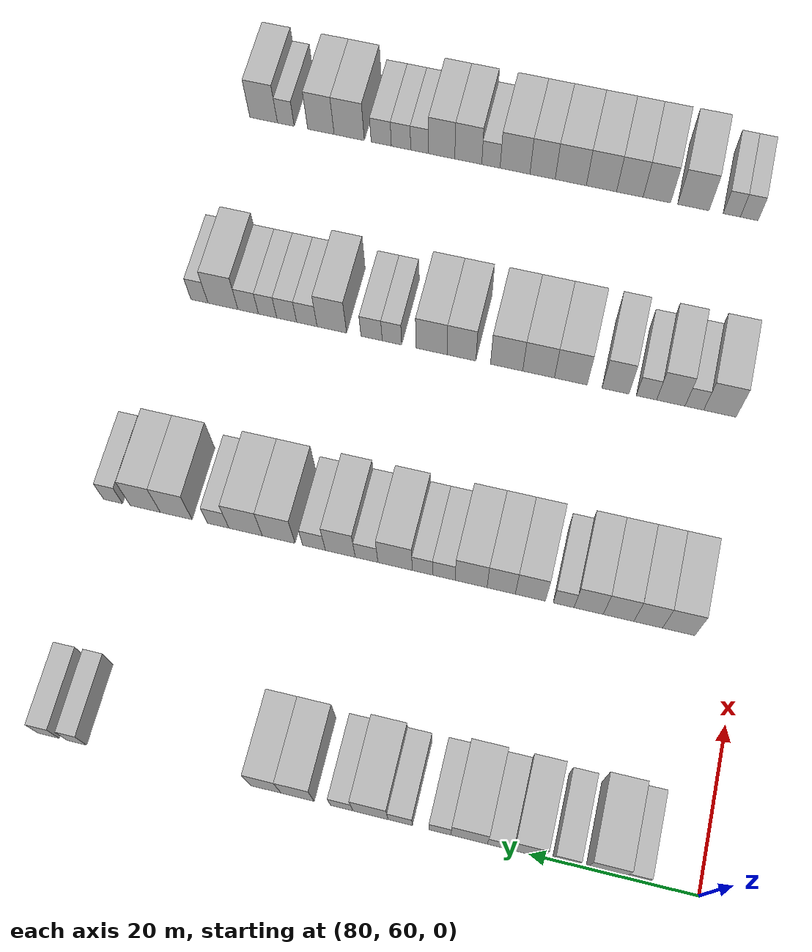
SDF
<sdf version="1.6">
 <world name="default">
  <model name="building_580">
   <static>1</static>
   <pose>85.0000 67.5329 0 0.000000 0.000000 0.000000</pose>
   <link name="link">
    <pose>0 0 3.00 0 0 0</pose>
    <collision name="collision"><geometry><box><size>10.0000 2.6239 6.0000</size></box></geometry></collision>
    <visual name="visual">
     <cast_shadows>0</cast_shadows>
     <geometry><box><size>10.0000 2.6239 6.0000</size></box></geometry>
     <material>
      <script>
       <uri>model://HANNAS_wall/materials/scripts</uri>
       <uri>model://HANNAS_wall/materials/textures</uri>
       <name>vrc/HANNAS_wall</name>
      </script>
     </material>
    </visual>
   </link>
  </model>
  <model name="building_581">
   <static>1</static>
   <pose>85.0000 71.0554 0 0.000000 0.000000 0.000000</pose>
   <link name="link">
    <pose>0 0 4.50 0 0 0</pose>
    <collision name="collision"><geometry><box><size>10.0000 4.4211 9.0000</size></box></geometry></collision>
    <visual name="visual">
     <cast_shadows>0</cast_shadows>
     <geometry><box><size>10.0000 4.4211 9.0000</size></box></geometry>
     <material>
      <script>
       <uri>model://HANNAS_wall/materials/scripts</uri>
       <uri>model://HANNAS_wall/materials/textures</uri>
       <name>vrc/HANNAS_wall</name>
      </script>
     </material>
    </visual>
   </link>
  </model>
  <model name="building_582">
   <static>1</static>
   <pose>85.0000 75.7478 0 0.000000 0.000000 0.000000</pose>
   <link name="link">
    <pose>0 0 3.00 0 0 0</pose>
    <collision name="collision"><geometry><box><size>10.0000 2.9638 6.0000</size></box></geometry></collision>
    <visual name="visual">
     <cast_shadows>0</cast_shadows>
     <geometry><box><size>10.0000 2.9638 6.0000</size></box></geometry>
     <material>
      <script>
       <uri>model://HANNAS_wall/materials/scripts</uri>
       <uri>model://HANNAS_wall/materials/textures</uri>
       <name>vrc/HANNAS_wall</name>
      </script>
     </material>
    </visual>
   </link>
  </model>
  <model name="building_583">
   <static>1</static>
   <pose>85.0000 80.1114 0 0.000000 0.000000 0.000000</pose>
   <link name="link">
    <pose>0 0 4.50 0 0 0</pose>
    <collision name="collision"><geometry><box><size>10.0000 3.7633 9.0000</size></box></geometry></collision>
    <visual name="visual">
     <cast_shadows>0</cast_shadows>
     <geometry><box><size>10.0000 3.7633 9.0000</size></box></geometry>
     <material>
      <script>
       <uri>model://HANNAS_wall/materials/scripts</uri>
       <uri>model://HANNAS_wall/materials/textures</uri>
       <name>vrc/HANNAS_wall</name>
      </script>
     </material>
    </visual>
   </link>
  </model>
  <model name="building_584">
   <static>1</static>
   <pose>85.0000 83.4820 0 0.000000 0.000000 0.000000</pose>
   <link name="link">
    <pose>0 0 3.00 0 0 0</pose>
    <collision name="collision"><geometry><box><size>10.0000 2.9780 6.0000</size></box></geometry></collision>
    <visual name="visual">
     <cast_shadows>0</cast_shadows>
     <geometry><box><size>10.0000 2.9780 6.0000</size></box></geometry>
     <material>
      <script>
       <uri>model://HANNAS_wall/materials/scripts</uri>
       <uri>model://HANNAS_wall/materials/textures</uri>
       <name>vrc/HANNAS_wall</name>
      </script>
     </material>
    </visual>
   </link>
  </model>
  <model name="building_585">
   <static>1</static>
   <pose>85.0000 87.1383 0 0.000000 0.000000 0.000000</pose>
   <link name="link">
    <pose>0 0 4.50 0 0 0</pose>
    <collision name="collision"><geometry><box><size>10.0000 4.3347 9.0000</size></box></geometry></collision>
    <visual name="visual">
     <cast_shadows>0</cast_shadows>
     <geometry><box><size>10.0000 4.3347 9.0000</size></box></geometry>
     <material>
      <script>
       <uri>model://HANNAS_wall/materials/scripts</uri>
       <uri>model://HANNAS_wall/materials/textures</uri>
       <name>vrc/HANNAS_wall</name>
      </script>
     </material>
    </visual>
   </link>
  </model>
  <model name="building_586">
   <static>1</static>
   <pose>85.0000 90.6195 0 0.000000 0.000000 0.000000</pose>
   <link name="link">
    <pose>0 0 3.00 0 0 0</pose>
    <collision name="collision"><geometry><box><size>10.0000 2.6277 6.0000</size></box></geometry></collision>
    <visual name="visual">
     <cast_shadows>0</cast_shadows>
     <geometry><box><size>10.0000 2.6277 6.0000</size></box></geometry>
     <material>
      <script>
       <uri>model://HANNAS_wall/materials/scripts</uri>
       <uri>model://HANNAS_wall/materials/textures</uri>
       <name>vrc/HANNAS_wall</name>
      </script>
     </material>
    </visual>
   </link>
  </model>
  <model name="building_587">
   <static>1</static>
   <pose>85.0000 95.3990 0 0.000000 0.000000 0.000000</pose>
   <link name="link">
    <pose>0 0 3.00 0 0 0</pose>
    <collision name="collision"><geometry><box><size>10.0000 2.9314 6.0000</size></box></geometry></collision>
    <visual name="visual">
     <cast_shadows>0</cast_shadows>
     <geometry><box><size>10.0000 2.9314 6.0000</size></box></geometry>
     <material>
      <script>
       <uri>model://HANNAS_wall/materials/scripts</uri>
       <uri>model://HANNAS_wall/materials/textures</uri>
       <name>vrc/HANNAS_wall</name>
      </script>
     </material>
    </visual>
   </link>
  </model>
  <model name="building_588">
   <static>1</static>
   <pose>85.0000 98.9991 0 0.000000 0.000000 0.000000</pose>
   <link name="link">
    <pose>0 0 4.50 0 0 0</pose>
    <collision name="collision"><geometry><box><size>10.0000 4.2687 9.0000</size></box></geometry></collision>
    <visual name="visual">
     <cast_shadows>0</cast_shadows>
     <geometry><box><size>10.0000 4.2687 9.0000</size></box></geometry>
     <material>
      <script>
       <uri>model://HANNAS_wall/materials/scripts</uri>
       <uri>model://HANNAS_wall/materials/textures</uri>
       <name>vrc/HANNAS_wall</name>
      </script>
     </material>
    </visual>
   </link>
  </model>
  <model name="building_589">
   <static>1</static>
   <pose>85.0000 102.4906 0 0.000000 0.000000 0.000000</pose>
   <link name="link">
    <pose>0 0 3.00 0 0 0</pose>
    <collision name="collision"><geometry><box><size>10.0000 2.7143 6.0000</size></box></geometry></collision>
    <visual name="visual">
     <cast_shadows>0</cast_shadows>
     <geometry><box><size>10.0000 2.7143 6.0000</size></box></geometry>
     <material>
      <script>
       <uri>model://HANNAS_wall/materials/scripts</uri>
       <uri>model://HANNAS_wall/materials/textures</uri>
       <name>vrc/HANNAS_wall</name>
      </script>
     </material>
    </visual>
   </link>
  </model>
  <model name="building_590">
   <static>1</static>
   <pose>85.0000 107.8688 0 0.000000 0.000000 0.000000</pose>
   <link name="link">
    <pose>0 0 4.50 0 0 0</pose>
    <collision name="collision"><geometry><box><size>10.0000 4.0420 9.0000</size></box></geometry></collision>
    <visual name="visual">
     <cast_shadows>0</cast_shadows>
     <geometry><box><size>10.0000 4.0420 9.0000</size></box></geometry>
     <material>
      <script>
       <uri>model://HANNAS_wall/materials/scripts</uri>
       <uri>model://HANNAS_wall/materials/textures</uri>
       <name>vrc/HANNAS_wall</name>
      </script>
     </material>
    </visual>
   </link>
  </model>
  <model name="building_591">
   <static>1</static>
   <pose>85.0000 111.7630 0 0.000000 0.000000 0.000000</pose>
   <link name="link">
    <pose>0 0 4.50 0 0 0</pose>
    <collision name="collision"><geometry><box><size>10.0000 3.7464 9.0000</size></box></geometry></collision>
    <visual name="visual">
     <cast_shadows>0</cast_shadows>
     <geometry><box><size>10.0000 3.7464 9.0000</size></box></geometry>
     <material>
      <script>
       <uri>model://HANNAS_wall/materials/scripts</uri>
       <uri>model://HANNAS_wall/materials/textures</uri>
       <name>vrc/HANNAS_wall</name>
      </script>
     </material>
    </visual>
   </link>
  </model>
  <model name="building_592">
   <static>1</static>
   <pose>85.0000 135.3054 0 0.000000 0.000000 0.000000</pose>
   <link name="link">
    <pose>0 0 3.00 0 0 0</pose>
    <collision name="collision"><geometry><box><size>10.0000 2.4462 6.0000</size></box></geometry></collision>
    <visual name="visual">
     <cast_shadows>0</cast_shadows>
     <geometry><box><size>10.0000 2.4462 6.0000</size></box></geometry>
     <material>
      <script>
       <uri>model://HANNAS_wall/materials/scripts</uri>
       <uri>model://HANNAS_wall/materials/textures</uri>
       <name>vrc/HANNAS_wall</name>
      </script>
     </material>
    </visual>
   </link>
  </model>
  <model name="building_593">
   <static>1</static>
   <pose>85.0000 138.8675 0 0.000000 0.000000 0.000000</pose>
   <link name="link">
    <pose>0 0 3.00 0 0 0</pose>
    <collision name="collision"><geometry><box><size>10.0000 2.6779 6.0000</size></box></geometry></collision>
    <visual name="visual">
     <cast_shadows>0</cast_shadows>
     <geometry><box><size>10.0000 2.6779 6.0000</size></box></geometry>
     <material>
      <script>
       <uri>model://HANNAS_wall/materials/scripts</uri>
       <uri>model://HANNAS_wall/materials/textures</uri>
       <name>vrc/HANNAS_wall</name>
      </script>
     </material>
    </visual>
   </link>
  </model>
  <model name="building_813">
   <static>1</static>
   <pose>115.0000 67.4014 0 0.000000 0.000000 0.000000</pose>
   <link name="link">
    <pose>0 0 4.50 0 0 0</pose>
    <collision name="collision"><geometry><box><size>10.0000 4.0448 9.0000</size></box></geometry></collision>
    <visual name="visual">
     <cast_shadows>0</cast_shadows>
     <geometry><box><size>10.0000 4.0448 9.0000</size></box></geometry>
     <material>
      <script>
       <uri>model://HANNAS_wall/materials/scripts</uri>
       <uri>model://HANNAS_wall/materials/textures</uri>
       <name>vrc/HANNAS_wall</name>
      </script>
     </material>
    </visual>
   </link>
  </model>
  <model name="building_814">
   <static>1</static>
   <pose>115.0000 71.2269 0 0.000000 0.000000 0.000000</pose>
   <link name="link">
    <pose>0 0 4.50 0 0 0</pose>
    <collision name="collision"><geometry><box><size>10.0000 3.6062 9.0000</size></box></geometry></collision>
    <visual name="visual">
     <cast_shadows>0</cast_shadows>
     <geometry><box><size>10.0000 3.6062 9.0000</size></box></geometry>
     <material>
      <script>
       <uri>model://HANNAS_wall/materials/scripts</uri>
       <uri>model://HANNAS_wall/materials/textures</uri>
       <name>vrc/HANNAS_wall</name>
      </script>
     </material>
    </visual>
   </link>
  </model>
  <model name="building_815">
   <static>1</static>
   <pose>115.0000 74.9522 0 0.000000 0.000000 0.000000</pose>
   <link name="link">
    <pose>0 0 4.50 0 0 0</pose>
    <collision name="collision"><geometry><box><size>10.0000 3.8443 9.0000</size></box></geometry></collision>
    <visual name="visual">
     <cast_shadows>0</cast_shadows>
     <geometry><box><size>10.0000 3.8443 9.0000</size></box></geometry>
     <material>
      <script>
       <uri>model://HANNAS_wall/materials/scripts</uri>
       <uri>model://HANNAS_wall/materials/textures</uri>
       <name>vrc/HANNAS_wall</name>
      </script>
     </material>
    </visual>
   </link>
  </model>
  <model name="building_816">
   <static>1</static>
   <pose>115.0000 78.7205 0 0.000000 0.000000 0.000000</pose>
   <link name="link">
    <pose>0 0 4.50 0 0 0</pose>
    <collision name="collision"><geometry><box><size>10.0000 3.6925 9.0000</size></box></geometry></collision>
    <visual name="visual">
     <cast_shadows>0</cast_shadows>
     <geometry><box><size>10.0000 3.6925 9.0000</size></box></geometry>
     <material>
      <script>
       <uri>model://HANNAS_wall/materials/scripts</uri>
       <uri>model://HANNAS_wall/materials/textures</uri>
       <name>vrc/HANNAS_wall</name>
      </script>
     </material>
    </visual>
   </link>
  </model>
  <model name="building_817">
   <static>1</static>
   <pose>115.0000 81.8884 0 0.000000 0.000000 0.000000</pose>
   <link name="link">
    <pose>0 0 3.00 0 0 0</pose>
    <collision name="collision"><geometry><box><size>10.0000 2.6433 6.0000</size></box></geometry></collision>
    <visual name="visual">
     <cast_shadows>0</cast_shadows>
     <geometry><box><size>10.0000 2.6433 6.0000</size></box></geometry>
     <material>
      <script>
       <uri>model://HANNAS_wall/materials/scripts</uri>
       <uri>model://HANNAS_wall/materials/textures</uri>
       <name>vrc/HANNAS_wall</name>
      </script>
     </material>
    </visual>
   </link>
  </model>
  <model name="building_818">
   <static>1</static>
   <pose>115.0000 86.1240 0 0.000000 0.000000 0.000000</pose>
   <link name="link">
    <pose>0 0 4.50 0 0 0</pose>
    <collision name="collision"><geometry><box><size>10.0000 3.8280 9.0000</size></box></geometry></collision>
    <visual name="visual">
     <cast_shadows>0</cast_shadows>
     <geometry><box><size>10.0000 3.8280 9.0000</size></box></geometry>
     <material>
      <script>
       <uri>model://HANNAS_wall/materials/scripts</uri>
       <uri>model://HANNAS_wall/materials/textures</uri>
       <name>vrc/HANNAS_wall</name>
      </script>
     </material>
    </visual>
   </link>
  </model>
  <model name="building_819">
   <static>1</static>
   <pose>115.0000 89.8478 0 0.000000 0.000000 0.000000</pose>
   <link name="link">
    <pose>0 0 4.50 0 0 0</pose>
    <collision name="collision"><geometry><box><size>10.0000 3.6195 9.0000</size></box></geometry></collision>
    <visual name="visual">
     <cast_shadows>0</cast_shadows>
     <geometry><box><size>10.0000 3.6195 9.0000</size></box></geometry>
     <material>
      <script>
       <uri>model://HANNAS_wall/materials/scripts</uri>
       <uri>model://HANNAS_wall/materials/textures</uri>
       <name>vrc/HANNAS_wall</name>
      </script>
     </material>
    </visual>
   </link>
  </model>
  <model name="building_820">
   <static>1</static>
   <pose>115.0000 93.7065 0 0.000000 0.000000 0.000000</pose>
   <link name="link">
    <pose>0 0 4.50 0 0 0</pose>
    <collision name="collision"><geometry><box><size>10.0000 4.0980 9.0000</size></box></geometry></collision>
    <visual name="visual">
     <cast_shadows>0</cast_shadows>
     <geometry><box><size>10.0000 4.0980 9.0000</size></box></geometry>
     <material>
      <script>
       <uri>model://HANNAS_wall/materials/scripts</uri>
       <uri>model://HANNAS_wall/materials/textures</uri>
       <name>vrc/HANNAS_wall</name>
      </script>
     </material>
    </visual>
   </link>
  </model>
  <model name="building_821">
   <static>1</static>
   <pose>115.0000 97.2113 0 0.000000 0.000000 0.000000</pose>
   <link name="link">
    <pose>0 0 3.00 0 0 0</pose>
    <collision name="collision"><geometry><box><size>10.0000 2.9115 6.0000</size></box></geometry></collision>
    <visual name="visual">
     <cast_shadows>0</cast_shadows>
     <geometry><box><size>10.0000 2.9115 6.0000</size></box></geometry>
     <material>
      <script>
       <uri>model://HANNAS_wall/materials/scripts</uri>
       <uri>model://HANNAS_wall/materials/textures</uri>
       <name>vrc/HANNAS_wall</name>
      </script>
     </material>
    </visual>
   </link>
  </model>
  <model name="building_822">
   <static>1</static>
   <pose>115.0000 99.9632 0 0.000000 0.000000 0.000000</pose>
   <link name="link">
    <pose>0 0 3.00 0 0 0</pose>
    <collision name="collision"><geometry><box><size>10.0000 2.5922 6.0000</size></box></geometry></collision>
    <visual name="visual">
     <cast_shadows>0</cast_shadows>
     <geometry><box><size>10.0000 2.5922 6.0000</size></box></geometry>
     <material>
      <script>
       <uri>model://HANNAS_wall/materials/scripts</uri>
       <uri>model://HANNAS_wall/materials/textures</uri>
       <name>vrc/HANNAS_wall</name>
      </script>
     </material>
    </visual>
   </link>
  </model>
  <model name="building_823">
   <static>1</static>
   <pose>115.0000 103.4846 0 0.000000 0.000000 0.000000</pose>
   <link name="link">
    <pose>0 0 4.50 0 0 0</pose>
    <collision name="collision"><geometry><box><size>10.0000 4.4505 9.0000</size></box></geometry></collision>
    <visual name="visual">
     <cast_shadows>0</cast_shadows>
     <geometry><box><size>10.0000 4.4505 9.0000</size></box></geometry>
     <material>
      <script>
       <uri>model://HANNAS_wall/materials/scripts</uri>
       <uri>model://HANNAS_wall/materials/textures</uri>
       <name>vrc/HANNAS_wall</name>
      </script>
     </material>
    </visual>
   </link>
  </model>
  <model name="building_824">
   <static>1</static>
   <pose>115.0000 107.1866 0 0.000000 0.000000 0.000000</pose>
   <link name="link">
    <pose>0 0 3.00 0 0 0</pose>
    <collision name="collision"><geometry><box><size>10.0000 2.9535 6.0000</size></box></geometry></collision>
    <visual name="visual">
     <cast_shadows>0</cast_shadows>
     <geometry><box><size>10.0000 2.9535 6.0000</size></box></geometry>
     <material>
      <script>
       <uri>model://HANNAS_wall/materials/scripts</uri>
       <uri>model://HANNAS_wall/materials/textures</uri>
       <name>vrc/HANNAS_wall</name>
      </script>
     </material>
    </visual>
   </link>
  </model>
  <model name="building_825">
   <static>1</static>
   <pose>115.0000 110.6150 0 0.000000 0.000000 0.000000</pose>
   <link name="link">
    <pose>0 0 4.50 0 0 0</pose>
    <collision name="collision"><geometry><box><size>10.0000 3.9033 9.0000</size></box></geometry></collision>
    <visual name="visual">
     <cast_shadows>0</cast_shadows>
     <geometry><box><size>10.0000 3.9033 9.0000</size></box></geometry>
     <material>
      <script>
       <uri>model://HANNAS_wall/materials/scripts</uri>
       <uri>model://HANNAS_wall/materials/textures</uri>
       <name>vrc/HANNAS_wall</name>
      </script>
     </material>
    </visual>
   </link>
  </model>
  <model name="building_826">
   <static>1</static>
   <pose>115.0000 114.0485 0 0.000000 0.000000 0.000000</pose>
   <link name="link">
    <pose>0 0 3.00 0 0 0</pose>
    <collision name="collision"><geometry><box><size>10.0000 2.9638 6.0000</size></box></geometry></collision>
    <visual name="visual">
     <cast_shadows>0</cast_shadows>
     <geometry><box><size>10.0000 2.9638 6.0000</size></box></geometry>
     <material>
      <script>
       <uri>model://HANNAS_wall/materials/scripts</uri>
       <uri>model://HANNAS_wall/materials/textures</uri>
       <name>vrc/HANNAS_wall</name>
      </script>
     </material>
    </visual>
   </link>
  </model>
  <model name="building_827">
   <static>1</static>
   <pose>115.0000 118.6836 0 0.000000 0.000000 0.000000</pose>
   <link name="link">
    <pose>0 0 4.50 0 0 0</pose>
    <collision name="collision"><geometry><box><size>10.0000 4.3063 9.0000</size></box></geometry></collision>
    <visual name="visual">
     <cast_shadows>0</cast_shadows>
     <geometry><box><size>10.0000 4.3063 9.0000</size></box></geometry>
     <material>
      <script>
       <uri>model://HANNAS_wall/materials/scripts</uri>
       <uri>model://HANNAS_wall/materials/textures</uri>
       <name>vrc/HANNAS_wall</name>
      </script>
     </material>
    </visual>
   </link>
  </model>
  <model name="building_828">
   <static>1</static>
   <pose>115.0000 123.0437 0 0.000000 0.000000 0.000000</pose>
   <link name="link">
    <pose>0 0 4.50 0 0 0</pose>
    <collision name="collision"><geometry><box><size>10.0000 4.4139 9.0000</size></box></geometry></collision>
    <visual name="visual">
     <cast_shadows>0</cast_shadows>
     <geometry><box><size>10.0000 4.4139 9.0000</size></box></geometry>
     <material>
      <script>
       <uri>model://HANNAS_wall/materials/scripts</uri>
       <uri>model://HANNAS_wall/materials/textures</uri>
       <name>vrc/HANNAS_wall</name>
      </script>
     </material>
    </visual>
   </link>
  </model>
  <model name="building_829">
   <static>1</static>
   <pose>115.0000 126.6876 0 0.000000 0.000000 0.000000</pose>
   <link name="link">
    <pose>0 0 3.00 0 0 0</pose>
    <collision name="collision"><geometry><box><size>10.0000 2.8739 6.0000</size></box></geometry></collision>
    <visual name="visual">
     <cast_shadows>0</cast_shadows>
     <geometry><box><size>10.0000 2.8739 6.0000</size></box></geometry>
     <material>
      <script>
       <uri>model://HANNAS_wall/materials/scripts</uri>
       <uri>model://HANNAS_wall/materials/textures</uri>
       <name>vrc/HANNAS_wall</name>
      </script>
     </material>
    </visual>
   </link>
  </model>
  <model name="building_830">
   <static>1</static>
   <pose>115.0000 132.2466 0 0.000000 0.000000 0.000000</pose>
   <link name="link">
    <pose>0 0 4.50 0 0 0</pose>
    <collision name="collision"><geometry><box><size>10.0000 4.2441 9.0000</size></box></geometry></collision>
    <visual name="visual">
     <cast_shadows>0</cast_shadows>
     <geometry><box><size>10.0000 4.2441 9.0000</size></box></geometry>
     <material>
      <script>
       <uri>model://HANNAS_wall/materials/scripts</uri>
       <uri>model://HANNAS_wall/materials/textures</uri>
       <name>vrc/HANNAS_wall</name>
      </script>
     </material>
    </visual>
   </link>
  </model>
  <model name="building_831">
   <static>1</static>
   <pose>115.0000 136.3837 0 0.000000 0.000000 0.000000</pose>
   <link name="link">
    <pose>0 0 4.50 0 0 0</pose>
    <collision name="collision"><geometry><box><size>10.0000 4.0301 9.0000</size></box></geometry></collision>
    <visual name="visual">
     <cast_shadows>0</cast_shadows>
     <geometry><box><size>10.0000 4.0301 9.0000</size></box></geometry>
     <material>
      <script>
       <uri>model://HANNAS_wall/materials/scripts</uri>
       <uri>model://HANNAS_wall/materials/textures</uri>
       <name>vrc/HANNAS_wall</name>
      </script>
     </material>
    </visual>
   </link>
  </model>
  <model name="building_832">
   <static>1</static>
   <pose>115.0000 140.6811 0 0.000000 0.000000 0.000000</pose>
   <link name="link">
    <pose>0 0 3.00 0 0 0</pose>
    <collision name="collision"><geometry><box><size>10.0000 2.5647 6.0000</size></box></geometry></collision>
    <visual name="visual">
     <cast_shadows>0</cast_shadows>
     <geometry><box><size>10.0000 2.5647 6.0000</size></box></geometry>
     <material>
      <script>
       <uri>model://HANNAS_wall/materials/scripts</uri>
       <uri>model://HANNAS_wall/materials/textures</uri>
       <name>vrc/HANNAS_wall</name>
      </script>
     </material>
    </visual>
   </link>
  </model>
  <model name="building_1027">
   <static>1</static>
   <pose>145.0000 66.9815 0 0.000000 0.000000 0.000000</pose>
   <link name="link">
    <pose>0 0 4.50 0 0 0</pose>
    <collision name="collision"><geometry><box><size>10.0000 4.2897 9.0000</size></box></geometry></collision>
    <visual name="visual">
     <cast_shadows>0</cast_shadows>
     <geometry><box><size>10.0000 4.2897 9.0000</size></box></geometry>
     <material>
      <script>
       <uri>model://HANNAS_wall/materials/scripts</uri>
       <uri>model://HANNAS_wall/materials/textures</uri>
       <name>vrc/HANNAS_wall</name>
      </script>
     </material>
    </visual>
   </link>
  </model>
  <model name="building_1028">
   <static>1</static>
   <pose>145.0000 70.3659 0 0.000000 0.000000 0.000000</pose>
   <link name="link">
    <pose>0 0 3.00 0 0 0</pose>
    <collision name="collision"><geometry><box><size>10.0000 2.4789 6.0000</size></box></geometry></collision>
    <visual name="visual">
     <cast_shadows>0</cast_shadows>
     <geometry><box><size>10.0000 2.4789 6.0000</size></box></geometry>
     <material>
      <script>
       <uri>model://HANNAS_wall/materials/scripts</uri>
       <uri>model://HANNAS_wall/materials/textures</uri>
       <name>vrc/HANNAS_wall</name>
      </script>
     </material>
    </visual>
   </link>
  </model>
  <model name="building_1029">
   <static>1</static>
   <pose>145.0000 73.5041 0 0.000000 0.000000 0.000000</pose>
   <link name="link">
    <pose>0 0 4.50 0 0 0</pose>
    <collision name="collision"><geometry><box><size>10.0000 3.7976 9.0000</size></box></geometry></collision>
    <visual name="visual">
     <cast_shadows>0</cast_shadows>
     <geometry><box><size>10.0000 3.7976 9.0000</size></box></geometry>
     <material>
      <script>
       <uri>model://HANNAS_wall/materials/scripts</uri>
       <uri>model://HANNAS_wall/materials/textures</uri>
       <name>vrc/HANNAS_wall</name>
      </script>
     </material>
    </visual>
   </link>
  </model>
  <model name="building_1030">
   <static>1</static>
   <pose>145.0000 76.7548 0 0.000000 0.000000 0.000000</pose>
   <link name="link">
    <pose>0 0 3.00 0 0 0</pose>
    <collision name="collision"><geometry><box><size>10.0000 2.7038 6.0000</size></box></geometry></collision>
    <visual name="visual">
     <cast_shadows>0</cast_shadows>
     <geometry><box><size>10.0000 2.7038 6.0000</size></box></geometry>
     <material>
      <script>
       <uri>model://HANNAS_wall/materials/scripts</uri>
       <uri>model://HANNAS_wall/materials/textures</uri>
       <name>vrc/HANNAS_wall</name>
      </script>
     </material>
    </visual>
   </link>
  </model>
  <model name="building_1031">
   <static>1</static>
   <pose>145.0000 80.9203 0 0.000000 0.000000 0.000000</pose>
   <link name="link">
    <pose>0 0 4.50 0 0 0</pose>
    <collision name="collision"><geometry><box><size>10.0000 3.6272 9.0000</size></box></geometry></collision>
    <visual name="visual">
     <cast_shadows>0</cast_shadows>
     <geometry><box><size>10.0000 3.6272 9.0000</size></box></geometry>
     <material>
      <script>
       <uri>model://HANNAS_wall/materials/scripts</uri>
       <uri>model://HANNAS_wall/materials/textures</uri>
       <name>vrc/HANNAS_wall</name>
      </script>
     </material>
    </visual>
   </link>
  </model>
  <model name="building_1032">
   <static>1</static>
   <pose>145.0000 86.9481 0 0.000000 0.000000 0.000000</pose>
   <link name="link">
    <pose>0 0 4.50 0 0 0</pose>
    <collision name="collision"><geometry><box><size>10.0000 4.4285 9.0000</size></box></geometry></collision>
    <visual name="visual">
     <cast_shadows>0</cast_shadows>
     <geometry><box><size>10.0000 4.4285 9.0000</size></box></geometry>
     <material>
      <script>
       <uri>model://HANNAS_wall/materials/scripts</uri>
       <uri>model://HANNAS_wall/materials/textures</uri>
       <name>vrc/HANNAS_wall</name>
      </script>
     </material>
    </visual>
   </link>
  </model>
  <model name="building_1033">
   <static>1</static>
   <pose>145.0000 91.3101 0 0.000000 0.000000 0.000000</pose>
   <link name="link">
    <pose>0 0 4.50 0 0 0</pose>
    <collision name="collision"><geometry><box><size>10.0000 4.2954 9.0000</size></box></geometry></collision>
    <visual name="visual">
     <cast_shadows>0</cast_shadows>
     <geometry><box><size>10.0000 4.2954 9.0000</size></box></geometry>
     <material>
      <script>
       <uri>model://HANNAS_wall/materials/scripts</uri>
       <uri>model://HANNAS_wall/materials/textures</uri>
       <name>vrc/HANNAS_wall</name>
      </script>
     </material>
    </visual>
   </link>
  </model>
  <model name="building_1034">
   <static>1</static>
   <pose>145.0000 95.6528 0 0.000000 0.000000 0.000000</pose>
   <link name="link">
    <pose>0 0 4.50 0 0 0</pose>
    <collision name="collision"><geometry><box><size>10.0000 4.3899 9.0000</size></box></geometry></collision>
    <visual name="visual">
     <cast_shadows>0</cast_shadows>
     <geometry><box><size>10.0000 4.3899 9.0000</size></box></geometry>
     <material>
      <script>
       <uri>model://HANNAS_wall/materials/scripts</uri>
       <uri>model://HANNAS_wall/materials/textures</uri>
       <name>vrc/HANNAS_wall</name>
      </script>
     </material>
    </visual>
   </link>
  </model>
  <model name="building_1035">
   <static>1</static>
   <pose>145.0000 101.8198 0 0.000000 0.000000 0.000000</pose>
   <link name="link">
    <pose>0 0 4.50 0 0 0</pose>
    <collision name="collision"><geometry><box><size>10.0000 3.9443 9.0000</size></box></geometry></collision>
    <visual name="visual">
     <cast_shadows>0</cast_shadows>
     <geometry><box><size>10.0000 3.9443 9.0000</size></box></geometry>
     <material>
      <script>
       <uri>model://HANNAS_wall/materials/scripts</uri>
       <uri>model://HANNAS_wall/materials/textures</uri>
       <name>vrc/HANNAS_wall</name>
      </script>
     </material>
    </visual>
   </link>
  </model>
  <model name="building_1036">
   <static>1</static>
   <pose>145.0000 105.9134 0 0.000000 0.000000 0.000000</pose>
   <link name="link">
    <pose>0 0 4.50 0 0 0</pose>
    <collision name="collision"><geometry><box><size>10.0000 4.2429 9.0000</size></box></geometry></collision>
    <visual name="visual">
     <cast_shadows>0</cast_shadows>
     <geometry><box><size>10.0000 4.2429 9.0000</size></box></geometry>
     <material>
      <script>
       <uri>model://HANNAS_wall/materials/scripts</uri>
       <uri>model://HANNAS_wall/materials/textures</uri>
       <name>vrc/HANNAS_wall</name>
      </script>
     </material>
    </visual>
   </link>
  </model>
  <model name="building_1037">
   <static>1</static>
   <pose>145.0000 111.3822 0 0.000000 0.000000 0.000000</pose>
   <link name="link">
    <pose>0 0 3.00 0 0 0</pose>
    <collision name="collision"><geometry><box><size>10.0000 2.6946 6.0000</size></box></geometry></collision>
    <visual name="visual">
     <cast_shadows>0</cast_shadows>
     <geometry><box><size>10.0000 2.6946 6.0000</size></box></geometry>
     <material>
      <script>
       <uri>model://HANNAS_wall/materials/scripts</uri>
       <uri>model://HANNAS_wall/materials/textures</uri>
       <name>vrc/HANNAS_wall</name>
      </script>
     </material>
    </visual>
   </link>
  </model>
  <model name="building_1038">
   <static>1</static>
   <pose>145.0000 114.1987 0 0.000000 0.000000 0.000000</pose>
   <link name="link">
    <pose>0 0 3.00 0 0 0</pose>
    <collision name="collision"><geometry><box><size>10.0000 2.9384 6.0000</size></box></geometry></collision>
    <visual name="visual">
     <cast_shadows>0</cast_shadows>
     <geometry><box><size>10.0000 2.9384 6.0000</size></box></geometry>
     <material>
      <script>
       <uri>model://HANNAS_wall/materials/scripts</uri>
       <uri>model://HANNAS_wall/materials/textures</uri>
       <name>vrc/HANNAS_wall</name>
      </script>
     </material>
    </visual>
   </link>
  </model>
  <model name="building_1039">
   <static>1</static>
   <pose>145.0000 119.7269 0 0.000000 0.000000 0.000000</pose>
   <link name="link">
    <pose>0 0 4.50 0 0 0</pose>
    <collision name="collision"><geometry><box><size>10.0000 4.1181 9.0000</size></box></geometry></collision>
    <visual name="visual">
     <cast_shadows>0</cast_shadows>
     <geometry><box><size>10.0000 4.1181 9.0000</size></box></geometry>
     <material>
      <script>
       <uri>model://HANNAS_wall/materials/scripts</uri>
       <uri>model://HANNAS_wall/materials/textures</uri>
       <name>vrc/HANNAS_wall</name>
      </script>
     </material>
    </visual>
   </link>
  </model>
  <model name="building_1040">
   <static>1</static>
   <pose>145.0000 123.2152 0 0.000000 0.000000 0.000000</pose>
   <link name="link">
    <pose>0 0 3.00 0 0 0</pose>
    <collision name="collision"><geometry><box><size>10.0000 2.8584 6.0000</size></box></geometry></collision>
    <visual name="visual">
     <cast_shadows>0</cast_shadows>
     <geometry><box><size>10.0000 2.8584 6.0000</size></box></geometry>
     <material>
      <script>
       <uri>model://HANNAS_wall/materials/scripts</uri>
       <uri>model://HANNAS_wall/materials/textures</uri>
       <name>vrc/HANNAS_wall</name>
      </script>
     </material>
    </visual>
   </link>
  </model>
  <model name="building_1041">
   <static>1</static>
   <pose>145.0000 126.0414 0 0.000000 0.000000 0.000000</pose>
   <link name="link">
    <pose>0 0 3.00 0 0 0</pose>
    <collision name="collision"><geometry><box><size>10.0000 2.7941 6.0000</size></box></geometry></collision>
    <visual name="visual">
     <cast_shadows>0</cast_shadows>
     <geometry><box><size>10.0000 2.7941 6.0000</size></box></geometry>
     <material>
      <script>
       <uri>model://HANNAS_wall/materials/scripts</uri>
       <uri>model://HANNAS_wall/materials/textures</uri>
       <name>vrc/HANNAS_wall</name>
      </script>
     </material>
    </visual>
   </link>
  </model>
  <model name="building_1042">
   <static>1</static>
   <pose>145.0000 128.7178 0 0.000000 0.000000 0.000000</pose>
   <link name="link">
    <pose>0 0 3.00 0 0 0</pose>
    <collision name="collision"><geometry><box><size>10.0000 2.5587 6.0000</size></box></geometry></collision>
    <visual name="visual">
     <cast_shadows>0</cast_shadows>
     <geometry><box><size>10.0000 2.5587 6.0000</size></box></geometry>
     <material>
      <script>
       <uri>model://HANNAS_wall/materials/scripts</uri>
       <uri>model://HANNAS_wall/materials/textures</uri>
       <name>vrc/HANNAS_wall</name>
      </script>
     </material>
    </visual>
   </link>
  </model>
  <model name="building_1043">
   <static>1</static>
   <pose>145.0000 131.4418 0 0.000000 0.000000 0.000000</pose>
   <link name="link">
    <pose>0 0 3.00 0 0 0</pose>
    <collision name="collision"><geometry><box><size>10.0000 2.8893 6.0000</size></box></geometry></collision>
    <visual name="visual">
     <cast_shadows>0</cast_shadows>
     <geometry><box><size>10.0000 2.8893 6.0000</size></box></geometry>
     <material>
      <script>
       <uri>model://HANNAS_wall/materials/scripts</uri>
       <uri>model://HANNAS_wall/materials/textures</uri>
       <name>vrc/HANNAS_wall</name>
      </script>
     </material>
    </visual>
   </link>
  </model>
  <model name="building_1044">
   <static>1</static>
   <pose>145.0000 135.0098 0 0.000000 0.000000 0.000000</pose>
   <link name="link">
    <pose>0 0 4.50 0 0 0</pose>
    <collision name="collision"><geometry><box><size>10.0000 4.2467 9.0000</size></box></geometry></collision>
    <visual name="visual">
     <cast_shadows>0</cast_shadows>
     <geometry><box><size>10.0000 4.2467 9.0000</size></box></geometry>
     <material>
      <script>
       <uri>model://HANNAS_wall/materials/scripts</uri>
       <uri>model://HANNAS_wall/materials/textures</uri>
       <name>vrc/HANNAS_wall</name>
      </script>
     </material>
    </visual>
   </link>
  </model>
  <model name="building_1045">
   <static>1</static>
   <pose>145.0000 138.3382 0 0.000000 0.000000 0.000000</pose>
   <link name="link">
    <pose>0 0 3.00 0 0 0</pose>
    <collision name="collision"><geometry><box><size>10.0000 2.4100 6.0000</size></box></geometry></collision>
    <visual name="visual">
     <cast_shadows>0</cast_shadows>
     <geometry><box><size>10.0000 2.4100 6.0000</size></box></geometry>
     <material>
      <script>
       <uri>model://HANNAS_wall/materials/scripts</uri>
       <uri>model://HANNAS_wall/materials/textures</uri>
       <name>vrc/HANNAS_wall</name>
      </script>
     </material>
    </visual>
   </link>
  </model>
  <model name="building_1262">
   <static>1</static>
   <pose>175.0000 67.5556 0 0.000000 0.000000 0.000000</pose>
   <link name="link">
    <pose>0 0 3.00 0 0 0</pose>
    <collision name="collision"><geometry><box><size>10.0000 2.4746 6.0000</size></box></geometry></collision>
    <visual name="visual">
     <cast_shadows>0</cast_shadows>
     <geometry><box><size>10.0000 2.4746 6.0000</size></box></geometry>
     <material>
      <script>
       <uri>model://HANNAS_wall/materials/scripts</uri>
       <uri>model://HANNAS_wall/materials/textures</uri>
       <name>vrc/HANNAS_wall</name>
      </script>
     </material>
    </visual>
   </link>
  </model>
  <model name="building_1263">
   <static>1</static>
   <pose>175.0000 70.0024 0 0.000000 0.000000 0.000000</pose>
   <link name="link">
    <pose>0 0 3.00 0 0 0</pose>
    <collision name="collision"><geometry><box><size>10.0000 2.4188 6.0000</size></box></geometry></collision>
    <visual name="visual">
     <cast_shadows>0</cast_shadows>
     <geometry><box><size>10.0000 2.4188 6.0000</size></box></geometry>
     <material>
      <script>
       <uri>model://HANNAS_wall/materials/scripts</uri>
       <uri>model://HANNAS_wall/materials/textures</uri>
       <name>vrc/HANNAS_wall</name>
      </script>
     </material>
    </visual>
   </link>
  </model>
  <model name="building_1264">
   <static>1</static>
   <pose>175.0000 75.4303 0 0.000000 0.000000 0.000000</pose>
   <link name="link">
    <pose>0 0 4.50 0 0 0</pose>
    <collision name="collision"><geometry><box><size>10.0000 4.4370 9.0000</size></box></geometry></collision>
    <visual name="visual">
     <cast_shadows>0</cast_shadows>
     <geometry><box><size>10.0000 4.4370 9.0000</size></box></geometry>
     <material>
      <script>
       <uri>model://HANNAS_wall/materials/scripts</uri>
       <uri>model://HANNAS_wall/materials/textures</uri>
       <name>vrc/HANNAS_wall</name>
      </script>
     </material>
    </visual>
   </link>
  </model>
  <model name="building_1265">
   <static>1</static>
   <pose>175.0000 80.6021 0 0.000000 0.000000 0.000000</pose>
   <link name="link">
    <pose>0 0 4.50 0 0 0</pose>
    <collision name="collision"><geometry><box><size>10.0000 3.9066 9.0000</size></box></geometry></collision>
    <visual name="visual">
     <cast_shadows>0</cast_shadows>
     <geometry><box><size>10.0000 3.9066 9.0000</size></box></geometry>
     <material>
      <script>
       <uri>model://HANNAS_wall/materials/scripts</uri>
       <uri>model://HANNAS_wall/materials/textures</uri>
       <name>vrc/HANNAS_wall</name>
      </script>
     </material>
    </visual>
   </link>
  </model>
  <model name="building_1266">
   <static>1</static>
   <pose>175.0000 84.4527 0 0.000000 0.000000 0.000000</pose>
   <link name="link">
    <pose>0 0 4.50 0 0 0</pose>
    <collision name="collision"><geometry><box><size>10.0000 3.7946 9.0000</size></box></geometry></collision>
    <visual name="visual">
     <cast_shadows>0</cast_shadows>
     <geometry><box><size>10.0000 3.7946 9.0000</size></box></geometry>
     <material>
      <script>
       <uri>model://HANNAS_wall/materials/scripts</uri>
       <uri>model://HANNAS_wall/materials/textures</uri>
       <name>vrc/HANNAS_wall</name>
      </script>
     </material>
    </visual>
   </link>
  </model>
  <model name="building_1267">
   <static>1</static>
   <pose>175.0000 88.5066 0 0.000000 0.000000 0.000000</pose>
   <link name="link">
    <pose>0 0 4.50 0 0 0</pose>
    <collision name="collision"><geometry><box><size>10.0000 4.3132 9.0000</size></box></geometry></collision>
    <visual name="visual">
     <cast_shadows>0</cast_shadows>
     <geometry><box><size>10.0000 4.3132 9.0000</size></box></geometry>
     <material>
      <script>
       <uri>model://HANNAS_wall/materials/scripts</uri>
       <uri>model://HANNAS_wall/materials/textures</uri>
       <name>vrc/HANNAS_wall</name>
      </script>
     </material>
    </visual>
   </link>
  </model>
  <model name="building_1268">
   <static>1</static>
   <pose>175.0000 92.9028 0 0.000000 0.000000 0.000000</pose>
   <link name="link">
    <pose>0 0 4.50 0 0 0</pose>
    <collision name="collision"><geometry><box><size>10.0000 4.4793 9.0000</size></box></geometry></collision>
    <visual name="visual">
     <cast_shadows>0</cast_shadows>
     <geometry><box><size>10.0000 4.4793 9.0000</size></box></geometry>
     <material>
      <script>
       <uri>model://HANNAS_wall/materials/scripts</uri>
       <uri>model://HANNAS_wall/materials/textures</uri>
       <name>vrc/HANNAS_wall</name>
      </script>
     </material>
    </visual>
   </link>
  </model>
  <model name="building_1269">
   <static>1</static>
   <pose>175.0000 96.9625 0 0.000000 0.000000 0.000000</pose>
   <link name="link">
    <pose>0 0 4.50 0 0 0</pose>
    <collision name="collision"><geometry><box><size>10.0000 3.6399 9.0000</size></box></geometry></collision>
    <visual name="visual">
     <cast_shadows>0</cast_shadows>
     <geometry><box><size>10.0000 3.6399 9.0000</size></box></geometry>
     <material>
      <script>
       <uri>model://HANNAS_wall/materials/scripts</uri>
       <uri>model://HANNAS_wall/materials/textures</uri>
       <name>vrc/HANNAS_wall</name>
      </script>
     </material>
    </visual>
   </link>
  </model>
  <model name="building_1270">
   <static>1</static>
   <pose>175.0000 100.9430 0 0.000000 0.000000 0.000000</pose>
   <link name="link">
    <pose>0 0 4.50 0 0 0</pose>
    <collision name="collision"><geometry><box><size>10.0000 4.3211 9.0000</size></box></geometry></collision>
    <visual name="visual">
     <cast_shadows>0</cast_shadows>
     <geometry><box><size>10.0000 4.3211 9.0000</size></box></geometry>
     <material>
      <script>
       <uri>model://HANNAS_wall/materials/scripts</uri>
       <uri>model://HANNAS_wall/materials/textures</uri>
       <name>vrc/HANNAS_wall</name>
      </script>
     </material>
    </visual>
   </link>
  </model>
  <model name="building_1271">
   <static>1</static>
   <pose>175.0000 104.4297 0 0.000000 0.000000 0.000000</pose>
   <link name="link">
    <pose>0 0 3.00 0 0 0</pose>
    <collision name="collision"><geometry><box><size>10.0000 2.6522 6.0000</size></box></geometry></collision>
    <visual name="visual">
     <cast_shadows>0</cast_shadows>
     <geometry><box><size>10.0000 2.6522 6.0000</size></box></geometry>
     <material>
      <script>
       <uri>model://HANNAS_wall/materials/scripts</uri>
       <uri>model://HANNAS_wall/materials/textures</uri>
       <name>vrc/HANNAS_wall</name>
      </script>
     </material>
    </visual>
   </link>
  </model>
  <model name="building_1272">
   <static>1</static>
   <pose>175.0000 107.7189 0 0.000000 0.000000 0.000000</pose>
   <link name="link">
    <pose>0 0 4.50 0 0 0</pose>
    <collision name="collision"><geometry><box><size>10.0000 3.9261 9.0000</size></box></geometry></collision>
    <visual name="visual">
     <cast_shadows>0</cast_shadows>
     <geometry><box><size>10.0000 3.9261 9.0000</size></box></geometry>
     <material>
      <script>
       <uri>model://HANNAS_wall/materials/scripts</uri>
       <uri>model://HANNAS_wall/materials/textures</uri>
       <name>vrc/HANNAS_wall</name>
      </script>
     </material>
    </visual>
   </link>
  </model>
  <model name="building_1273">
   <static>1</static>
   <pose>175.0000 111.5964 0 0.000000 0.000000 0.000000</pose>
   <link name="link">
    <pose>0 0 4.50 0 0 0</pose>
    <collision name="collision"><geometry><box><size>10.0000 3.8291 9.0000</size></box></geometry></collision>
    <visual name="visual">
     <cast_shadows>0</cast_shadows>
     <geometry><box><size>10.0000 3.8291 9.0000</size></box></geometry>
     <material>
      <script>
       <uri>model://HANNAS_wall/materials/scripts</uri>
       <uri>model://HANNAS_wall/materials/textures</uri>
       <name>vrc/HANNAS_wall</name>
      </script>
     </material>
    </visual>
   </link>
  </model>
  <model name="building_1274">
   <static>1</static>
   <pose>175.0000 114.8159 0 0.000000 0.000000 0.000000</pose>
   <link name="link">
    <pose>0 0 3.00 0 0 0</pose>
    <collision name="collision"><geometry><box><size>10.0000 2.6098 6.0000</size></box></geometry></collision>
    <visual name="visual">
     <cast_shadows>0</cast_shadows>
     <geometry><box><size>10.0000 2.6098 6.0000</size></box></geometry>
     <material>
      <script>
       <uri>model://HANNAS_wall/materials/scripts</uri>
       <uri>model://HANNAS_wall/materials/textures</uri>
       <name>vrc/HANNAS_wall</name>
      </script>
     </material>
    </visual>
   </link>
  </model>
  <model name="building_1275">
   <static>1</static>
   <pose>175.0000 117.5394 0 0.000000 0.000000 0.000000</pose>
   <link name="link">
    <pose>0 0 3.00 0 0 0</pose>
    <collision name="collision"><geometry><box><size>10.0000 2.8373 6.0000</size></box></geometry></collision>
    <visual name="visual">
     <cast_shadows>0</cast_shadows>
     <geometry><box><size>10.0000 2.8373 6.0000</size></box></geometry>
     <material>
      <script>
       <uri>model://HANNAS_wall/materials/scripts</uri>
       <uri>model://HANNAS_wall/materials/textures</uri>
       <name>vrc/HANNAS_wall</name>
      </script>
     </material>
    </visual>
   </link>
  </model>
  <model name="building_1276">
   <static>1</static>
   <pose>175.0000 120.4461 0 0.000000 0.000000 0.000000</pose>
   <link name="link">
    <pose>0 0 3.00 0 0 0</pose>
    <collision name="collision"><geometry><box><size>10.0000 2.9761 6.0000</size></box></geometry></collision>
    <visual name="visual">
     <cast_shadows>0</cast_shadows>
     <geometry><box><size>10.0000 2.9761 6.0000</size></box></geometry>
     <material>
      <script>
       <uri>model://HANNAS_wall/materials/scripts</uri>
       <uri>model://HANNAS_wall/materials/textures</uri>
       <name>vrc/HANNAS_wall</name>
      </script>
     </material>
    </visual>
   </link>
  </model>
  <model name="building_1277">
   <static>1</static>
   <pose>175.0000 125.1673 0 0.000000 0.000000 0.000000</pose>
   <link name="link">
    <pose>0 0 4.50 0 0 0</pose>
    <collision name="collision"><geometry><box><size>10.0000 4.4663 9.0000</size></box></geometry></collision>
    <visual name="visual">
     <cast_shadows>0</cast_shadows>
     <geometry><box><size>10.0000 4.4663 9.0000</size></box></geometry>
     <material>
      <script>
       <uri>model://HANNAS_wall/materials/scripts</uri>
       <uri>model://HANNAS_wall/materials/textures</uri>
       <name>vrc/HANNAS_wall</name>
      </script>
     </material>
    </visual>
   </link>
  </model>
  <model name="building_1278">
   <static>1</static>
   <pose>175.0000 129.3556 0 0.000000 0.000000 0.000000</pose>
   <link name="link">
    <pose>0 0 4.50 0 0 0</pose>
    <collision name="collision"><geometry><box><size>10.0000 3.9103 9.0000</size></box></geometry></collision>
    <visual name="visual">
     <cast_shadows>0</cast_shadows>
     <geometry><box><size>10.0000 3.9103 9.0000</size></box></geometry>
     <material>
      <script>
       <uri>model://HANNAS_wall/materials/scripts</uri>
       <uri>model://HANNAS_wall/materials/textures</uri>
       <name>vrc/HANNAS_wall</name>
      </script>
     </material>
    </visual>
   </link>
  </model>
  <model name="building_1279">
   <static>1</static>
   <pose>175.0000 134.5609 0 0.000000 0.000000 0.000000</pose>
   <link name="link">
    <pose>0 0 3.00 0 0 0</pose>
    <collision name="collision"><geometry><box><size>10.0000 2.5003 6.0000</size></box></geometry></collision>
    <visual name="visual">
     <cast_shadows>0</cast_shadows>
     <geometry><box><size>10.0000 2.5003 6.0000</size></box></geometry>
     <material>
      <script>
       <uri>model://HANNAS_wall/materials/scripts</uri>
       <uri>model://HANNAS_wall/materials/textures</uri>
       <name>vrc/HANNAS_wall</name>
      </script>
     </material>
    </visual>
   </link>
  </model>
  <model name="building_1280">
   <static>1</static>
   <pose>175.0000 137.8750 0 0.000000 0.000000 0.000000</pose>
   <link name="link">
    <pose>0 0 4.50 0 0 0</pose>
    <collision name="collision"><geometry><box><size>10.0000 4.1280 9.0000</size></box></geometry></collision>
    <visual name="visual">
     <cast_shadows>0</cast_shadows>
     <geometry><box><size>10.0000 4.1280 9.0000</size></box></geometry>
     <material>
      <script>
       <uri>model://HANNAS_wall/materials/scripts</uri>
       <uri>model://HANNAS_wall/materials/textures</uri>
       <name>vrc/HANNAS_wall</name>
      </script>
     </material>
    </visual>
   </link>
  </model>
 </world>
</sdf>
